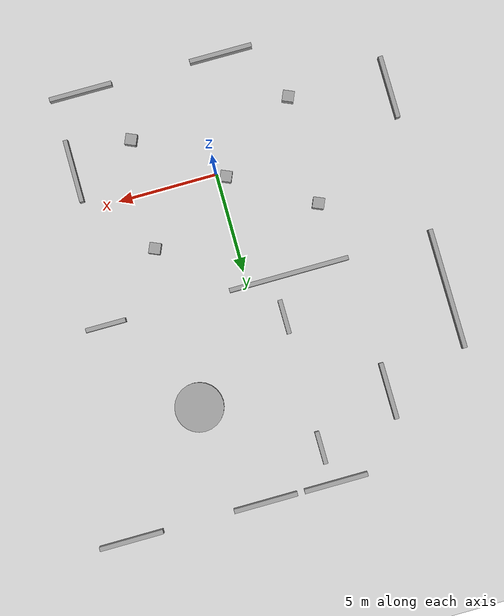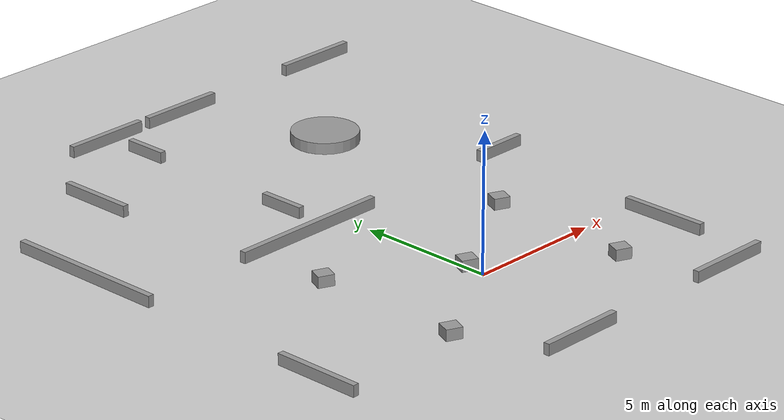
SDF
<sdf version="1.6">
 <world name="default">
  <model name="ground_plane">
   <static>1</static>
   <link name="link">
    <collision name="collision">
     <geometry><plane><normal>0 0 1</normal><size>100 100</size></plane></geometry>
     <surface>
      <contact><collide_bitmask>65535</collide_bitmask></contact>
      <friction><ode><mu>100</mu><mu2>50</mu2></ode></friction>
     </surface>
    </collision>
    <visual name="visual">
     <cast_shadows>0</cast_shadows>
     <geometry><plane><normal>0 0 1</normal><size>100 100</size></plane></geometry>
     <material>
      <script><uri>file://media/materials/scripts/gazebo.material</uri><name>Gazebo/Grey</name></script>
     </material>
    </visual>
   </link>
  </model>
  <model name="maze">
   <link name="link_4_clone_0_clone">
    <pose>-17.8012 -10.6509 9e-06 0 -0 0</pose>
    <inertial>
     <mass>4.30693</mass>
     <inertia><ixx>0.46587</ixx><ixy>0</ixy><ixz>0</ixz><iyy>22.6991</iyy><iyz>0</iyz><izz>22.4471</izz></inertia>
    </inertial>
    <visual name="visual">
     <geometry><box><size>3.1558 0.218362 0.4</size></box></geometry>
     <material>
      <lighting>1</lighting>
      <script><uri>file://media/materials/scripts/gazebo.material</uri><name>Gazebo/Grey</name></script>
      <ambient>0.3 0.3 0.3 1</ambient>
      <diffuse>0.7 0.7 0.7 1</diffuse>
      <specular>0.01 0.01 0.01 1</specular>
      <emissive>0 0 0 1</emissive>
      <shader type="pixel"/>
     </material>
    </visual>
    <collision name="collision">
     <geometry><box><size>3.1558 0.218362 0.4</size></box></geometry>
     <surface>
      <friction>
       <ode><mu>1</mu><mu2>1</mu2><fdir1>0 0 0</fdir1><slip1>0</slip1><slip2>0</slip2></ode>
       <torsional>
        <coefficient>1</coefficient>
        <patch_radius>0</patch_radius>
        <surface_radius>0</surface_radius>
        <use_patch_radius>1</use_patch_radius>
        <ode><slip>0</slip></ode>
       </torsional>
      </friction>
      <bounce><restitution_coefficient>0</restitution_coefficient><threshold>1e+06</threshold></bounce>
      <contact>
       <collide_without_contact>0</collide_without_contact>
       <collide_without_contact_bitmask>1</collide_without_contact_bitmask>
       <collide_bitmask>1</collide_bitmask>
       <ode>
        <soft_cfm>0</soft_cfm>
        <soft_erp>0.2</soft_erp>
        <kp>1e+13</kp>
        <kd>1</kd>
        <max_vel>0.01</max_vel>
        <min_depth>0</min_depth>
       </ode>
       <bullet>
        <split_impulse>1</split_impulse>
        <split_impulse_penetration_threshold>-0.01</split_impulse_penetration_threshold>
        <soft_cfm>0</soft_cfm>
        <soft_erp>0.2</soft_erp>
        <kp>1e+13</kp>
        <kd>1</kd>
       </bullet>
      </contact>
     </surface>
    </collision>
   </link>
   <link name="link_4_clone_0_clone_clone">
    <pose>-17.57 11.05 9e-06 0 -0 0</pose>
    <inertial>
     <mass>4.30693</mass>
     <inertia><ixx>0.46587</ixx><ixy>0</ixy><ixz>0</ixz><iyy>22.6991</iyy><iyz>0</iyz><izz>22.4471</izz></inertia>
    </inertial>
    <visual name="visual">
     <geometry><box><size>3.1558 0.218362 0.4</size></box></geometry>
     <material>
      <lighting>1</lighting>
      <script><uri>file://media/materials/scripts/gazebo.material</uri><name>Gazebo/Grey</name></script>
      <ambient>0.3 0.3 0.3 1</ambient>
      <diffuse>0.7 0.7 0.7 1</diffuse>
      <specular>0.01 0.01 0.01 1</specular>
      <emissive>0 0 0 1</emissive>
      <shader type="pixel"/>
     </material>
    </visual>
    <collision name="collision">
     <geometry><box><size>3.1558 0.218362 0.4</size></box></geometry>
     <surface>
      <friction>
       <ode><mu>1</mu><mu2>1</mu2><fdir1>0 0 0</fdir1><slip1>0</slip1><slip2>0</slip2></ode>
       <torsional>
        <coefficient>1</coefficient>
        <patch_radius>0</patch_radius>
        <surface_radius>0</surface_radius>
        <use_patch_radius>1</use_patch_radius>
        <ode><slip>0</slip></ode>
       </torsional>
      </friction>
      <bounce><restitution_coefficient>0</restitution_coefficient><threshold>1e+06</threshold></bounce>
      <contact>
       <collide_without_contact>0</collide_without_contact>
       <collide_without_contact_bitmask>1</collide_without_contact_bitmask>
       <collide_bitmask>1</collide_bitmask>
       <ode>
        <soft_cfm>0</soft_cfm>
        <soft_erp>0.2</soft_erp>
        <kp>1e+13</kp>
        <kd>1</kd>
        <max_vel>0.01</max_vel>
        <min_depth>0</min_depth>
       </ode>
       <bullet>
        <split_impulse>1</split_impulse>
        <split_impulse_penetration_threshold>-0.01</split_impulse_penetration_threshold>
        <soft_cfm>0</soft_cfm>
        <soft_erp>0.2</soft_erp>
        <kp>1e+13</kp>
        <kd>1</kd>
       </bullet>
      </contact>
     </surface>
    </collision>
   </link>
   <link name="link_4_clone_0_clone_clone_0">
    <pose>-14.0594 11.05 9e-06 0 -0 0</pose>
    <inertial>
     <mass>4.30693</mass>
     <inertia><ixx>0.46587</ixx><ixy>0</ixy><ixz>0</ixz><iyy>22.6991</iyy><iyz>0</iyz><izz>22.4471</izz></inertia>
    </inertial>
    <visual name="visual">
     <geometry><box><size>3.1558 0.218362 0.4</size></box></geometry>
     <material>
      <lighting>1</lighting>
      <script><uri>file://media/materials/scripts/gazebo.material</uri><name>Gazebo/Grey</name></script>
      <ambient>0.3 0.3 0.3 1</ambient>
      <diffuse>0.7 0.7 0.7 1</diffuse>
      <specular>0.01 0.01 0.01 1</specular>
      <emissive>0 0 0 1</emissive>
      <shader type="pixel"/>
     </material>
    </visual>
    <collision name="collision">
     <geometry><box><size>3.1558 0.218362 0.4</size></box></geometry>
     <surface>
      <friction>
       <ode><mu>1</mu><mu2>1</mu2><fdir1>0 0 0</fdir1><slip1>0</slip1><slip2>0</slip2></ode>
       <torsional>
        <coefficient>1</coefficient>
        <patch_radius>0</patch_radius>
        <surface_radius>0</surface_radius>
        <use_patch_radius>1</use_patch_radius>
        <ode><slip>0</slip></ode>
       </torsional>
      </friction>
      <bounce><restitution_coefficient>0</restitution_coefficient><threshold>1e+06</threshold></bounce>
      <contact>
       <collide_without_contact>0</collide_without_contact>
       <collide_without_contact_bitmask>1</collide_without_contact_bitmask>
       <collide_bitmask>1</collide_bitmask>
       <ode>
        <soft_cfm>0</soft_cfm>
        <soft_erp>0.2</soft_erp>
        <kp>1e+13</kp>
        <kd>1</kd>
        <max_vel>0.01</max_vel>
        <min_depth>0</min_depth>
       </ode>
       <bullet>
        <split_impulse>1</split_impulse>
        <split_impulse_penetration_threshold>-0.01</split_impulse_penetration_threshold>
        <soft_cfm>0</soft_cfm>
        <soft_erp>0.2</soft_erp>
        <kp>1e+13</kp>
        <kd>1</kd>
       </bullet>
      </contact>
     </surface>
    </collision>
   </link>
   <link name="link_4_clone_0_clone_clone_1">
    <pose>-10.6658 -10.6545 9e-06 0 -0 0</pose>
    <inertial>
     <mass>4.30693</mass>
     <inertia><ixx>0.46587</ixx><ixy>0</ixy><ixz>0</ixz><iyy>22.6991</iyy><iyz>0</iyz><izz>22.4471</izz></inertia>
    </inertial>
    <visual name="visual">
     <geometry><box><size>3.1558 0.218362 0.4</size></box></geometry>
     <material>
      <lighting>1</lighting>
      <script><uri>file://media/materials/scripts/gazebo.material</uri><name>Gazebo/Grey</name></script>
      <ambient>0.3 0.3 0.3 1</ambient>
      <diffuse>0.7 0.7 0.7 1</diffuse>
      <specular>0.01 0.01 0.01 1</specular>
      <emissive>0 0 0 1</emissive>
      <shader type="pixel"/>
     </material>
    </visual>
    <collision name="collision">
     <geometry><box><size>3.1558 0.218362 0.4</size></box></geometry>
     <surface>
      <friction>
       <ode><mu>1</mu><mu2>1</mu2><fdir1>0 0 0</fdir1><slip1>0</slip1><slip2>0</slip2></ode>
       <torsional>
        <coefficient>1</coefficient>
        <patch_radius>0</patch_radius>
        <surface_radius>0</surface_radius>
        <use_patch_radius>1</use_patch_radius>
        <ode><slip>0</slip></ode>
       </torsional>
      </friction>
      <bounce><restitution_coefficient>0</restitution_coefficient><threshold>1e+06</threshold></bounce>
      <contact>
       <collide_without_contact>0</collide_without_contact>
       <collide_without_contact_bitmask>1</collide_without_contact_bitmask>
       <collide_bitmask>1</collide_bitmask>
       <ode>
        <soft_cfm>0</soft_cfm>
        <soft_erp>0.2</soft_erp>
        <kp>1e+13</kp>
        <kd>1</kd>
        <max_vel>0.01</max_vel>
        <min_depth>0</min_depth>
       </ode>
       <bullet>
        <split_impulse>1</split_impulse>
        <split_impulse_penetration_threshold>-0.01</split_impulse_penetration_threshold>
        <soft_cfm>0</soft_cfm>
        <soft_erp>0.2</soft_erp>
        <kp>1e+13</kp>
        <kd>1</kd>
       </bullet>
      </contact>
     </surface>
    </collision>
   </link>
   <link name="new_wall_2">
    <pose>-8.87 0.76 9e-06 0 -0 0</pose>
    <inertial>
     <mass>3.50538</mass>
     <inertia><ixx>0.379168</ixx><ixy>0</ixy><ixz>0</ixz><iyy>12.3366</iyy><iyz>0</iyz><izz>12.1315</izz></inertia>
    </inertial>
    <visual name="visual">
     <geometry><box><size>2 0.218362 0.4</size></box></geometry>
     <material>
      <lighting>1</lighting>
      <script><uri>file://media/materials/scripts/gazebo.material</uri><name>Gazebo/Grey</name></script>
      <ambient>0.3 0.3 0.3 1</ambient>
      <diffuse>0.7 0.7 0.7 1</diffuse>
      <specular>0.01 0.01 0.01 1</specular>
      <emissive>0 0 0 1</emissive>
      <shader type="pixel"/>
     </material>
    </visual>
    <collision name="collision">
     <geometry><box><size>2.56849 0.218362 0.4</size></box></geometry>
     <surface>
      <friction>
       <ode><mu>1</mu><mu2>1</mu2><fdir1>0 0 0</fdir1><slip1>0</slip1><slip2>0</slip2></ode>
       <torsional>
        <coefficient>1</coefficient>
        <patch_radius>0</patch_radius>
        <surface_radius>0</surface_radius>
        <use_patch_radius>1</use_patch_radius>
        <ode><slip>0</slip></ode>
       </torsional>
      </friction>
      <bounce><restitution_coefficient>0</restitution_coefficient><threshold>1e+06</threshold></bounce>
      <contact>
       <collide_without_contact>0</collide_without_contact>
       <collide_without_contact_bitmask>1</collide_without_contact_bitmask>
       <collide_bitmask>1</collide_bitmask>
       <ode>
        <soft_cfm>0</soft_cfm>
        <soft_erp>0.2</soft_erp>
        <kp>1e+13</kp>
        <kd>1</kd>
        <max_vel>0.01</max_vel>
        <min_depth>0</min_depth>
       </ode>
       <bullet>
        <split_impulse>1</split_impulse>
        <split_impulse_penetration_threshold>-0.01</split_impulse_penetration_threshold>
        <soft_cfm>0</soft_cfm>
        <soft_erp>0.2</soft_erp>
        <kp>1e+13</kp>
        <kd>1</kd>
       </bullet>
      </contact>
     </surface>
    </collision>
   </link>
   <link name="link_4_clone_0_clone_clone_2">
    <pose>-7.3733 11.05 9e-06 0 -0 0</pose>
    <inertial>
     <mass>4.30693</mass>
     <inertia><ixx>0.46587</ixx><ixy>0</ixy><ixz>0</ixz><iyy>22.6991</iyy><iyz>0</iyz><izz>22.4471</izz></inertia>
    </inertial>
    <visual name="visual">
     <geometry><box><size>3.1558 0.218362 0.4</size></box></geometry>
     <material>
      <lighting>1</lighting>
      <script><uri>file://media/materials/scripts/gazebo.material</uri><name>Gazebo/Grey</name></script>
      <ambient>0.3 0.3 0.3 1</ambient>
      <diffuse>0.7 0.7 0.7 1</diffuse>
      <specular>0.01 0.01 0.01 1</specular>
      <emissive>0 0 0 1</emissive>
      <shader type="pixel"/>
     </material>
    </visual>
    <collision name="collision">
     <geometry><box><size>3.1558 0.218362 0.4</size></box></geometry>
     <surface>
      <friction>
       <ode><mu>1</mu><mu2>1</mu2><fdir1>0 0 0</fdir1><slip1>0</slip1><slip2>0</slip2></ode>
       <torsional>
        <coefficient>1</coefficient>
        <patch_radius>0</patch_radius>
        <surface_radius>0</surface_radius>
        <use_patch_radius>1</use_patch_radius>
        <ode><slip>0</slip></ode>
       </torsional>
      </friction>
      <bounce><restitution_coefficient>0</restitution_coefficient><threshold>1e+06</threshold></bounce>
      <contact>
       <collide_without_contact>0</collide_without_contact>
       <collide_without_contact_bitmask>1</collide_without_contact_bitmask>
       <collide_bitmask>1</collide_bitmask>
       <ode>
        <soft_cfm>0</soft_cfm>
        <soft_erp>0.2</soft_erp>
        <kp>1e+13</kp>
        <kd>1</kd>
        <max_vel>0.01</max_vel>
        <min_depth>0</min_depth>
       </ode>
       <bullet>
        <split_impulse>1</split_impulse>
        <split_impulse_penetration_threshold>-0.01</split_impulse_penetration_threshold>
        <soft_cfm>0</soft_cfm>
        <soft_erp>0.2</soft_erp>
        <kp>1e+13</kp>
        <kd>1</kd>
       </bullet>
      </contact>
     </surface>
    </collision>
   </link>
   <link name="link_4_clone_1">
    <pose>-25.338 -6.8 9e-06 0 0 -1.56693</pose>
    <inertial>
     <mass>4.30693</mass>
     <inertia><ixx>0.46587</ixx><ixy>0</ixy><ixz>0</ixz><iyy>22.6991</iyy><iyz>0</iyz><izz>22.4471</izz></inertia>
    </inertial>
    <visual name="visual">
     <geometry><box><size>3.1558 0.218362 0.4</size></box></geometry>
     <material>
      <lighting>1</lighting>
      <script><uri>file://media/materials/scripts/gazebo.material</uri><name>Gazebo/Grey</name></script>
      <ambient>0.3 0.3 0.3 1</ambient>
      <diffuse>0.7 0.7 0.7 1</diffuse>
      <specular>0.01 0.01 0.01 1</specular>
      <emissive>0 0 0 1</emissive>
      <shader type="pixel"/>
     </material>
    </visual>
    <collision name="collision">
     <geometry><box><size>3.1558 0.218362 0.4</size></box></geometry>
     <surface>
      <friction>
       <ode><mu>1</mu><mu2>1</mu2><fdir1>0 0 0</fdir1><slip1>0</slip1><slip2>0</slip2></ode>
       <torsional>
        <coefficient>1</coefficient>
        <patch_radius>0</patch_radius>
        <surface_radius>0</surface_radius>
        <use_patch_radius>1</use_patch_radius>
        <ode><slip>0</slip></ode>
       </torsional>
      </friction>
      <bounce><restitution_coefficient>0</restitution_coefficient><threshold>1e+06</threshold></bounce>
      <contact>
       <collide_without_contact>0</collide_without_contact>
       <collide_without_contact_bitmask>1</collide_without_contact_bitmask>
       <collide_bitmask>1</collide_bitmask>
       <ode>
        <soft_cfm>0</soft_cfm>
        <soft_erp>0.2</soft_erp>
        <kp>1e+13</kp>
        <kd>1</kd>
        <max_vel>0.01</max_vel>
        <min_depth>0</min_depth>
       </ode>
       <bullet>
        <split_impulse>1</split_impulse>
        <split_impulse_penetration_threshold>-0.01</split_impulse_penetration_threshold>
        <soft_cfm>0</soft_cfm>
        <soft_erp>0.2</soft_erp>
        <kp>1e+13</kp>
        <kd>1</kd>
       </bullet>
      </contact>
     </surface>
    </collision>
   </link>
   <link name="link_4_clone_1_clone">
    <pose>-25.3389 3.5 9e-06 0 0 -1.56693</pose>
    <inertial>
     <mass>4.30693</mass>
     <inertia><ixx>0.46587</ixx><ixy>0</ixy><ixz>0</ixz><iyy>22.6991</iyy><iyz>0</iyz><izz>22.4471</izz></inertia>
    </inertial>
    <visual name="visual">
     <geometry><box><size>6 0.218362 0.4</size></box></geometry>
     <material>
      <lighting>1</lighting>
      <script><uri>file://media/materials/scripts/gazebo.material</uri><name>Gazebo/Grey</name></script>
      <ambient>0.3 0.3 0.3 1</ambient>
      <diffuse>0.7 0.7 0.7 1</diffuse>
      <specular>0.01 0.01 0.01 1</specular>
      <emissive>0 0 0 1</emissive>
      <shader type="pixel"/>
     </material>
    </visual>
    <collision name="collision">
     <geometry><box><size>3.1558 0.218362 0.4</size></box></geometry>
     <surface>
      <friction>
       <ode><mu>1</mu><mu2>1</mu2><fdir1>0 0 0</fdir1><slip1>0</slip1><slip2>0</slip2></ode>
       <torsional>
        <coefficient>1</coefficient>
        <patch_radius>0</patch_radius>
        <surface_radius>0</surface_radius>
        <use_patch_radius>1</use_patch_radius>
        <ode><slip>0</slip></ode>
       </torsional>
      </friction>
      <bounce><restitution_coefficient>0</restitution_coefficient><threshold>1e+06</threshold></bounce>
      <contact>
       <collide_without_contact>0</collide_without_contact>
       <collide_without_contact_bitmask>1</collide_without_contact_bitmask>
       <collide_bitmask>1</collide_bitmask>
       <ode>
        <soft_cfm>0</soft_cfm>
        <soft_erp>0.2</soft_erp>
        <kp>1e+13</kp>
        <kd>1</kd>
        <max_vel>0.01</max_vel>
        <min_depth>0</min_depth>
       </ode>
       <bullet>
        <split_impulse>1</split_impulse>
        <split_impulse_penetration_threshold>-0.01</split_impulse_penetration_threshold>
        <soft_cfm>0</soft_cfm>
        <soft_erp>0.2</soft_erp>
        <kp>1e+13</kp>
        <kd>1</kd>
       </bullet>
      </contact>
     </surface>
    </collision>
   </link>
   <link name="link_4_clone_1_clone">
    <pose>-18.1 0.75 9e-06 0 0 -3.14</pose>
    <inertial>
     <mass>4.30693</mass>
     <inertia><ixx>0.46587</ixx><ixy>0</ixy><ixz>0</ixz><iyy>22.6991</iyy><iyz>0</iyz><izz>22.4471</izz></inertia>
    </inertial>
    <visual name="visual">
     <geometry><box><size>6 0.218362 0.4</size></box></geometry>
     <material>
      <lighting>1</lighting>
      <script><uri>file://media/materials/scripts/gazebo.material</uri><name>Gazebo/Grey</name></script>
      <ambient>0.3 0.3 0.3 1</ambient>
      <diffuse>0.7 0.7 0.7 1</diffuse>
      <specular>0.01 0.01 0.01 1</specular>
      <emissive>0 0 0 1</emissive>
      <shader type="pixel"/>
     </material>
    </visual>
    <collision name="collision">
     <geometry><box><size>3.1558 0.218362 0.4</size></box></geometry>
     <surface>
      <friction>
       <ode><mu>1</mu><mu2>1</mu2><fdir1>0 0 0</fdir1><slip1>0</slip1><slip2>0</slip2></ode>
       <torsional>
        <coefficient>1</coefficient>
        <patch_radius>0</patch_radius>
        <surface_radius>0</surface_radius>
        <use_patch_radius>1</use_patch_radius>
        <ode><slip>0</slip></ode>
       </torsional>
      </friction>
      <bounce><restitution_coefficient>0</restitution_coefficient><threshold>1e+06</threshold></bounce>
      <contact>
       <collide_without_contact>0</collide_without_contact>
       <collide_without_contact_bitmask>1</collide_without_contact_bitmask>
       <collide_bitmask>1</collide_bitmask>
       <ode>
        <soft_cfm>0</soft_cfm>
        <soft_erp>0.2</soft_erp>
        <kp>1e+13</kp>
        <kd>1</kd>
        <max_vel>0.01</max_vel>
        <min_depth>0</min_depth>
       </ode>
       <bullet>
        <split_impulse>1</split_impulse>
        <split_impulse_penetration_threshold>-0.01</split_impulse_penetration_threshold>
        <soft_cfm>0</soft_cfm>
        <soft_erp>0.2</soft_erp>
        <kp>1e+13</kp>
        <kd>1</kd>
       </bullet>
      </contact>
     </surface>
    </collision>
   </link>
   <link name="link_4_clone_1_clone_0">
    <pose>-9.31294 -6.93569 9e-06 0 0 -1.56693</pose>
    <inertial>
     <mass>4.30693</mass>
     <inertia><ixx>0.46587</ixx><ixy>0</ixy><ixz>0</ixz><iyy>22.6991</iyy><iyz>0</iyz><izz>22.4471</izz></inertia>
    </inertial>
    <visual name="visual">
     <geometry><box><size>3.1558 0.218362 0.4</size></box></geometry>
     <material>
      <lighting>1</lighting>
      <script><uri>file://media/materials/scripts/gazebo.material</uri><name>Gazebo/Grey</name></script>
      <ambient>0.3 0.3 0.3 1</ambient>
      <diffuse>0.7 0.7 0.7 1</diffuse>
      <specular>0.01 0.01 0.01 1</specular>
      <emissive>0 0 0 1</emissive>
      <shader type="pixel"/>
     </material>
    </visual>
    <collision name="collision">
     <geometry><box><size>3.1558 0.218362 0.4</size></box></geometry>
     <surface>
      <friction>
       <ode><mu>1</mu><mu2>1</mu2><fdir1>0 0 0</fdir1><slip1>0</slip1><slip2>0</slip2></ode>
       <torsional>
        <coefficient>1</coefficient>
        <patch_radius>0</patch_radius>
        <surface_radius>0</surface_radius>
        <use_patch_radius>1</use_patch_radius>
        <ode><slip>0</slip></ode>
       </torsional>
      </friction>
      <bounce><restitution_coefficient>0</restitution_coefficient><threshold>1e+06</threshold></bounce>
      <contact>
       <collide_without_contact>0</collide_without_contact>
       <collide_without_contact_bitmask>1</collide_without_contact_bitmask>
       <collide_bitmask>1</collide_bitmask>
       <ode>
        <soft_cfm>0</soft_cfm>
        <soft_erp>0.2</soft_erp>
        <kp>1e+13</kp>
        <kd>1</kd>
        <max_vel>0.01</max_vel>
        <min_depth>0</min_depth>
       </ode>
       <bullet>
        <split_impulse>1</split_impulse>
        <split_impulse_penetration_threshold>-0.01</split_impulse_penetration_threshold>
        <soft_cfm>0</soft_cfm>
        <soft_erp>0.2</soft_erp>
        <kp>1e+13</kp>
        <kd>1</kd>
       </bullet>
      </contact>
     </surface>
    </collision>
   </link>
   <link name="partition_1">
    <pose>-21.225 7.5 9e-06 0 0 -1.56693</pose>
    <inertial>
     <mass>2.3361</mass>
     <inertia><ixx>0.25269</ixx><ixy>0</ixy><ixz>0</ixz><iyy>3.75965</iyy><iyz>0</iyz><izz>3.62299</izz></inertia>
    </inertial>
    <visual name="visual">
     <geometry><box><size>2.8 0.218362 0.4</size></box></geometry>
     <material>
      <lighting>1</lighting>
      <script><uri>file://media/materials/scripts/gazebo.material</uri><name>Gazebo/Grey</name></script>
      <ambient>0.3 0.3 0.3 1</ambient>
      <diffuse>0.7 0.7 0.7 1</diffuse>
      <specular>0.01 0.01 0.01 1</specular>
      <emissive>0 0 0 1</emissive>
      <shader type="pixel"/>
     </material>
    </visual>
    <collision name="collision">
     <geometry><box><size>1.71172 0.218362 0.4</size></box></geometry>
     <surface>
      <friction>
       <ode><mu>1</mu><mu2>1</mu2><fdir1>0 0 0</fdir1><slip1>0</slip1><slip2>0</slip2></ode>
       <torsional>
        <coefficient>1</coefficient>
        <patch_radius>0</patch_radius>
        <surface_radius>0</surface_radius>
        <use_patch_radius>1</use_patch_radius>
        <ode><slip>0</slip></ode>
       </torsional>
      </friction>
      <bounce><restitution_coefficient>0</restitution_coefficient><threshold>1e+06</threshold></bounce>
      <contact>
       <collide_without_contact>0</collide_without_contact>
       <collide_without_contact_bitmask>1</collide_without_contact_bitmask>
       <collide_bitmask>1</collide_bitmask>
       <ode>
        <soft_cfm>0</soft_cfm>
        <soft_erp>0.2</soft_erp>
        <kp>1e+13</kp>
        <kd>1</kd>
        <max_vel>0.01</max_vel>
        <min_depth>0</min_depth>
       </ode>
       <bullet>
        <split_impulse>1</split_impulse>
        <split_impulse_penetration_threshold>-0.01</split_impulse_penetration_threshold>
        <soft_cfm>0</soft_cfm>
        <soft_erp>0.2</soft_erp>
        <kp>1e+13</kp>
        <kd>1</kd>
       </bullet>
      </contact>
     </surface>
    </collision>
   </link>
   <link name="partition_2">
    <pose>-17.335 2.7 9e-06 0 0 -1.56693</pose>
    <inertial>
     <mass>2.3361</mass>
     <inertia><ixx>0.25269</ixx><ixy>0</ixy><ixz>0</ixz><iyy>3.75965</iyy><iyz>0</iyz><izz>3.62299</izz></inertia>
    </inertial>
    <visual name="visual">
     <geometry><box><size>1.71172 0.218362 0.4</size></box></geometry>
     <material>
      <lighting>1</lighting>
      <script><uri>file://media/materials/scripts/gazebo.material</uri><name>Gazebo/Grey</name></script>
      <ambient>0.3 0.3 0.3 1</ambient>
      <diffuse>0.7 0.7 0.7 1</diffuse>
      <specular>0.01 0.01 0.01 1</specular>
      <emissive>0 0 0 1</emissive>
      <shader type="pixel"/>
     </material>
    </visual>
    <collision name="collision">
     <geometry><box><size>1.71172 0.218362 0.4</size></box></geometry>
     <surface>
      <friction>
       <ode><mu>1</mu><mu2>1</mu2><fdir1>0 0 0</fdir1><slip1>0</slip1><slip2>0</slip2></ode>
       <torsional>
        <coefficient>1</coefficient>
        <patch_radius>0</patch_radius>
        <surface_radius>0</surface_radius>
        <use_patch_radius>1</use_patch_radius>
        <ode><slip>0</slip></ode>
       </torsional>
      </friction>
      <bounce><restitution_coefficient>0</restitution_coefficient><threshold>1e+06</threshold></bounce>
      <contact>
       <collide_without_contact>0</collide_without_contact>
       <collide_without_contact_bitmask>1</collide_without_contact_bitmask>
       <collide_bitmask>1</collide_bitmask>
       <ode>
        <soft_cfm>0</soft_cfm>
        <soft_erp>0.2</soft_erp>
        <kp>1e+13</kp>
        <kd>1</kd>
        <max_vel>0.01</max_vel>
        <min_depth>0</min_depth>
       </ode>
       <bullet>
        <split_impulse>1</split_impulse>
        <split_impulse_penetration_threshold>-0.01</split_impulse_penetration_threshold>
        <soft_cfm>0</soft_cfm>
        <soft_erp>0.2</soft_erp>
        <kp>1e+13</kp>
        <kd>1</kd>
       </bullet>
      </contact>
     </surface>
    </collision>
   </link>
   <link name="partition_3">
    <pose>-17.335 9.25 9e-06 0 0 -1.56693</pose>
    <inertial>
     <mass>1.50003</mass>
     <inertia>
      <ixx>0.162255</ixx>
      <ixy>0</ixy>
      <ixz>0</ixz>
      <iyy>1.06881</iyy>
      <iyz>0</iyz>
      <izz>0.981058</izz>
     </inertia>
    </inertial>
    <visual name="visual">
     <geometry><box><size>1.6 0.218362 0.4</size></box></geometry>
     <material>
      <lighting>1</lighting>
      <script><uri>file://media/materials/scripts/gazebo.material</uri><name>Gazebo/Grey</name></script>
      <ambient>0.3 0.3 0.3 1</ambient>
      <diffuse>0.7 0.7 0.7 1</diffuse>
      <specular>0.01 0.01 0.01 1</specular>
      <emissive>0 0 0 1</emissive>
      <shader type="pixel"/>
     </material>
    </visual>
    <collision name="collision">
     <geometry><box><size>1.09911 0.218362 0.4</size></box></geometry>
     <surface>
      <friction>
       <ode><mu>1</mu><mu2>1</mu2><fdir1>0 0 0</fdir1><slip1>0</slip1><slip2>0</slip2></ode>
       <torsional>
        <coefficient>1</coefficient>
        <patch_radius>0</patch_radius>
        <surface_radius>0</surface_radius>
        <use_patch_radius>1</use_patch_radius>
        <ode><slip>0</slip></ode>
       </torsional>
      </friction>
      <bounce><restitution_coefficient>0</restitution_coefficient><threshold>1e+06</threshold></bounce>
      <contact>
       <collide_without_contact>0</collide_without_contact>
       <collide_without_contact_bitmask>1</collide_without_contact_bitmask>
       <collide_bitmask>1</collide_bitmask>
       <ode>
        <soft_cfm>0</soft_cfm>
        <soft_erp>0.2</soft_erp>
        <kp>1e+13</kp>
        <kd>1</kd>
        <max_vel>0.01</max_vel>
        <min_depth>0</min_depth>
       </ode>
       <bullet>
        <split_impulse>1</split_impulse>
        <split_impulse_penetration_threshold>-0.01</split_impulse_penetration_threshold>
        <soft_cfm>0</soft_cfm>
        <soft_erp>0.2</soft_erp>
        <kp>1e+13</kp>
        <kd>1</kd>
       </bullet>
      </contact>
     </surface>
    </collision>
   </link>
   <link name="obstacle_1">
    <pose>-12.193 5.8 9e-06 0 -0 0</pose>
    <inertial>
     <mass>1</mass>
     <inertia><ixx>0.145833</ixx><ixy>0</ixy><ixz>0</ixz><iyy>0.145833</iyy><iyz>0</iyz><izz>0.125</izz></inertia>
    </inertial>
    <visual name="visual">
     <geometry><cylinder><radius>1.2</radius><length>0.4</length></cylinder></geometry>
     <material>
      <lighting>1</lighting>
      <script><uri>file://media/materials/scripts/gazebo.material</uri><name>Gazebo/Grey</name></script>
      <ambient>0.3 0.3 0.3 1</ambient>
      <diffuse>0.7 0.7 0.7 1</diffuse>
      <specular>0.01 0.01 0.01 1</specular>
      <emissive>0 0 0 1</emissive>
     </material>
    </visual>
    <collision name="collision">
     <geometry><cylinder><radius>0.2</radius><length>0.4</length></cylinder></geometry>
     <surface>
      <friction>
       <ode><mu>1</mu><mu2>1</mu2><fdir1>0 0 0</fdir1><slip1>0</slip1><slip2>0</slip2></ode>
       <torsional>
        <coefficient>1</coefficient>
        <patch_radius>0</patch_radius>
        <surface_radius>0</surface_radius>
        <use_patch_radius>1</use_patch_radius>
        <ode><slip>0</slip></ode>
       </torsional>
      </friction>
      <bounce><restitution_coefficient>0</restitution_coefficient><threshold>1e+06</threshold></bounce>
      <contact>
       <collide_without_contact>0</collide_without_contact>
       <collide_without_contact_bitmask>1</collide_without_contact_bitmask>
       <collide_bitmask>1</collide_bitmask>
       <ode>
        <soft_cfm>0</soft_cfm>
        <soft_erp>0.2</soft_erp>
        <kp>1e+13</kp>
        <kd>1</kd>
        <max_vel>0.01</max_vel>
        <min_depth>0</min_depth>
       </ode>
       <bullet>
        <split_impulse>1</split_impulse>
        <split_impulse_penetration_threshold>-0.01</split_impulse_penetration_threshold>
        <soft_cfm>0</soft_cfm>
        <soft_erp>0.2</soft_erp>
        <kp>1e+13</kp>
        <kd>1</kd>
       </bullet>
      </contact>
     </surface>
    </collision>
   </link>
   <link name="link_6">
    <pose>-12.4356 -7.69108 9e-06 0 0 -0.406538</pose>
    <inertial>
     <mass>1.94722</mass>
     <inertia><ixx>0.463684</ixx><ixy>0</ixy><ixz>0</ixz><iyy>0.4935</iyy><iyz>0</iyz><izz>0.632648</izz></inertia>
    </inertial>
    <visual name="visual">
     <geometry><box><size>0.571492 0.545164 0.4</size></box></geometry>
     <material>
      <lighting>1</lighting>
      <script><uri>file://media/materials/scripts/gazebo.material</uri><name>Gazebo/Grey</name></script>
      <ambient>0.3 0.3 0.3 1</ambient>
      <diffuse>0.7 0.7 0.7 1</diffuse>
      <specular>0.01 0.01 0.01 1</specular>
      <emissive>0 0 0 1</emissive>
     </material>
    </visual>
    <collision name="collision">
     <geometry><box><size>0.571492 0.545164 0.4</size></box></geometry>
     <surface>
      <friction>
       <ode><mu>1</mu><mu2>1</mu2><fdir1>0 0 0</fdir1><slip1>0</slip1><slip2>0</slip2></ode>
       <torsional>
        <coefficient>1</coefficient>
        <patch_radius>0</patch_radius>
        <surface_radius>0</surface_radius>
        <use_patch_radius>1</use_patch_radius>
        <ode><slip>0</slip></ode>
       </torsional>
      </friction>
      <bounce><restitution_coefficient>0</restitution_coefficient><threshold>1e+06</threshold></bounce>
      <contact>
       <collide_without_contact>0</collide_without_contact>
       <collide_without_contact_bitmask>1</collide_without_contact_bitmask>
       <collide_bitmask>1</collide_bitmask>
       <ode>
        <soft_cfm>0</soft_cfm>
        <soft_erp>0.2</soft_erp>
        <kp>1e+13</kp>
        <kd>1</kd>
        <max_vel>0.01</max_vel>
        <min_depth>0</min_depth>
       </ode>
       <bullet>
        <split_impulse>1</split_impulse>
        <split_impulse_penetration_threshold>-0.01</split_impulse_penetration_threshold>
        <soft_cfm>0</soft_cfm>
        <soft_erp>0.2</soft_erp>
        <kp>1e+13</kp>
        <kd>1</kd>
       </bullet>
      </contact>
     </surface>
    </collision>
   </link>
   <link name="center_box">
    <pose>-16.4356 -4.691 9e-06 0 0 -0.406538</pose>
    <inertial>
     <mass>1.94722</mass>
     <inertia><ixx>0.463684</ixx><ixy>0</ixy><ixz>0</ixz><iyy>0.4935</iyy><iyz>0</iyz><izz>0.632648</izz></inertia>
    </inertial>
    <visual name="visual">
     <geometry><box><size>0.571492 0.545164 0.4</size></box></geometry>
     <material>
      <lighting>1</lighting>
      <script><uri>file://media/materials/scripts/gazebo.material</uri><name>Gazebo/Grey</name></script>
      <ambient>0.3 0.3 0.3 1</ambient>
      <diffuse>0.7 0.7 0.7 1</diffuse>
      <specular>0.01 0.01 0.01 1</specular>
      <emissive>0 0 0 1</emissive>
     </material>
    </visual>
    <collision name="collision">
     <geometry><box><size>0.571492 0.545164 0.4</size></box></geometry>
     <surface>
      <friction>
       <ode><mu>1</mu><mu2>1</mu2><fdir1>0 0 0</fdir1><slip1>0</slip1><slip2>0</slip2></ode>
       <torsional>
        <coefficient>1</coefficient>
        <patch_radius>0</patch_radius>
        <surface_radius>0</surface_radius>
        <use_patch_radius>1</use_patch_radius>
        <ode><slip>0</slip></ode>
       </torsional>
      </friction>
      <bounce><restitution_coefficient>0</restitution_coefficient><threshold>1e+06</threshold></bounce>
      <contact>
       <collide_without_contact>0</collide_without_contact>
       <collide_without_contact_bitmask>1</collide_without_contact_bitmask>
       <collide_bitmask>1</collide_bitmask>
       <ode>
        <soft_cfm>0</soft_cfm>
        <soft_erp>0.2</soft_erp>
        <kp>1e+13</kp>
        <kd>1</kd>
        <max_vel>0.01</max_vel>
        <min_depth>0</min_depth>
       </ode>
       <bullet>
        <split_impulse>1</split_impulse>
        <split_impulse_penetration_threshold>-0.01</split_impulse_penetration_threshold>
        <soft_cfm>0</soft_cfm>
        <soft_erp>0.2</soft_erp>
        <kp>1e+13</kp>
        <kd>1</kd>
       </bullet>
      </contact>
     </surface>
    </collision>
   </link>
   <link name="bottom_left_box">
    <pose>-20.4356 -2.20744 9e-06 0 0 -0.406538</pose>
    <inertial>
     <mass>1.94722</mass>
     <inertia><ixx>0.463684</ixx><ixy>0</ixy><ixz>0</ixz><iyy>0.4935</iyy><iyz>0</iyz><izz>0.632648</izz></inertia>
    </inertial>
    <visual name="visual">
     <geometry><box><size>0.571492 0.545164 0.4</size></box></geometry>
     <material>
      <lighting>1</lighting>
      <script><uri>file://media/materials/scripts/gazebo.material</uri><name>Gazebo/Grey</name></script>
      <ambient>0.3 0.3 0.3 1</ambient>
      <diffuse>0.7 0.7 0.7 1</diffuse>
      <specular>0.01 0.01 0.01 1</specular>
      <emissive>0 0 0 1</emissive>
     </material>
    </visual>
    <collision name="collision">
     <geometry><box><size>0.571492 0.545164 0.4</size></box></geometry>
     <surface>
      <friction>
       <ode><mu>1</mu><mu2>1</mu2><fdir1>0 0 0</fdir1><slip1>0</slip1><slip2>0</slip2></ode>
       <torsional>
        <coefficient>1</coefficient>
        <patch_radius>0</patch_radius>
        <surface_radius>0</surface_radius>
        <use_patch_radius>1</use_patch_radius>
        <ode><slip>0</slip></ode>
       </torsional>
      </friction>
      <bounce><restitution_coefficient>0</restitution_coefficient><threshold>1e+06</threshold></bounce>
      <contact>
       <collide_without_contact>0</collide_without_contact>
       <collide_without_contact_bitmask>1</collide_without_contact_bitmask>
       <collide_bitmask>1</collide_bitmask>
       <ode>
        <soft_cfm>0</soft_cfm>
        <soft_erp>0.2</soft_erp>
        <kp>1e+13</kp>
        <kd>1</kd>
        <max_vel>0.01</max_vel>
        <min_depth>0</min_depth>
       </ode>
       <bullet>
        <split_impulse>1</split_impulse>
        <split_impulse_penetration_threshold>-0.01</split_impulse_penetration_threshold>
        <soft_cfm>0</soft_cfm>
        <soft_erp>0.2</soft_erp>
        <kp>1e+13</kp>
        <kd>1</kd>
       </bullet>
      </contact>
     </surface>
    </collision>
   </link>
   <link name="bottom_right_box">
    <pose>-20.4356 -7.69108 9e-06 0 0 -0.406538</pose>
    <inertial>
     <mass>1.94722</mass>
     <inertia><ixx>0.463684</ixx><ixy>0</ixy><ixz>0</ixz><iyy>0.4935</iyy><iyz>0</iyz><izz>0.632648</izz></inertia>
    </inertial>
    <visual name="visual">
     <geometry><box><size>0.571492 0.545164 0.4</size></box></geometry>
     <material>
      <lighting>1</lighting>
      <script><uri>file://media/materials/scripts/gazebo.material</uri><name>Gazebo/Grey</name></script>
      <ambient>0.3 0.3 0.3 1</ambient>
      <diffuse>0.7 0.7 0.7 1</diffuse>
      <specular>0.01 0.01 0.01 1</specular>
      <emissive>0 0 0 1</emissive>
     </material>
    </visual>
    <collision name="collision">
     <geometry><box><size>0.571492 0.545164 0.4</size></box></geometry>
     <surface>
      <friction>
       <ode><mu>1</mu><mu2>1</mu2><fdir1>0 0 0</fdir1><slip1>0</slip1><slip2>0</slip2></ode>
       <torsional>
        <coefficient>1</coefficient>
        <patch_radius>0</patch_radius>
        <surface_radius>0</surface_radius>
        <use_patch_radius>1</use_patch_radius>
        <ode><slip>0</slip></ode>
       </torsional>
      </friction>
      <bounce><restitution_coefficient>0</restitution_coefficient><threshold>1e+06</threshold></bounce>
      <contact>
       <collide_without_contact>0</collide_without_contact>
       <collide_without_contact_bitmask>1</collide_without_contact_bitmask>
       <collide_bitmask>1</collide_bitmask>
       <ode>
        <soft_cfm>0</soft_cfm>
        <soft_erp>0.2</soft_erp>
        <kp>1e+13</kp>
        <kd>1</kd>
        <max_vel>0.01</max_vel>
        <min_depth>0</min_depth>
       </ode>
       <bullet>
        <split_impulse>1</split_impulse>
        <split_impulse_penetration_threshold>-0.01</split_impulse_penetration_threshold>
        <soft_cfm>0</soft_cfm>
        <soft_erp>0.2</soft_erp>
        <kp>1e+13</kp>
        <kd>1</kd>
       </bullet>
      </contact>
     </surface>
    </collision>
   </link>
   <link name="link_6_clone">
    <pose>-12.1551 -2.20744 9e-06 0 0 -0.406538</pose>
    <inertial>
     <mass>1.94722</mass>
     <inertia><ixx>0.463684</ixx><ixy>0</ixy><ixz>0</ixz><iyy>0.4935</iyy><iyz>0</iyz><izz>0.632648</izz></inertia>
    </inertial>
    <visual name="visual">
     <geometry><box><size>0.571492 0.545164 0.4</size></box></geometry>
     <material>
      <lighting>1</lighting>
      <script><uri>file://media/materials/scripts/gazebo.material</uri><name>Gazebo/Grey</name></script>
      <ambient>0.3 0.3 0.3 1</ambient>
      <diffuse>0.7 0.7 0.7 1</diffuse>
      <specular>0.01 0.01 0.01 1</specular>
      <emissive>0 0 0 1</emissive>
      <shader type="pixel"/>
     </material>
    </visual>
    <collision name="collision">
     <geometry><box><size>0.571492 0.545164 0.4</size></box></geometry>
     <surface>
      <friction>
       <ode><mu>1</mu><mu2>1</mu2><fdir1>0 0 0</fdir1><slip1>0</slip1><slip2>0</slip2></ode>
       <torsional>
        <coefficient>1</coefficient>
        <patch_radius>0</patch_radius>
        <surface_radius>0</surface_radius>
        <use_patch_radius>1</use_patch_radius>
        <ode><slip>0</slip></ode>
       </torsional>
      </friction>
      <bounce><restitution_coefficient>0</restitution_coefficient><threshold>1e+06</threshold></bounce>
      <contact>
       <collide_without_contact>0</collide_without_contact>
       <collide_without_contact_bitmask>1</collide_without_contact_bitmask>
       <collide_bitmask>1</collide_bitmask>
       <ode>
        <soft_cfm>0</soft_cfm>
        <soft_erp>0.2</soft_erp>
        <kp>1e+13</kp>
        <kd>1</kd>
        <max_vel>0.01</max_vel>
        <min_depth>0</min_depth>
       </ode>
       <bullet>
        <split_impulse>1</split_impulse>
        <split_impulse_penetration_threshold>-0.01</split_impulse_penetration_threshold>
        <soft_cfm>0</soft_cfm>
        <soft_erp>0.2</soft_erp>
        <kp>1e+13</kp>
        <kd>1</kd>
       </bullet>
      </contact>
     </surface>
    </collision>
   </link>
   <static>0</static>
   <pose>16 5 0.499991 0 -0 0</pose>
  </model>
 </world>
</sdf>
